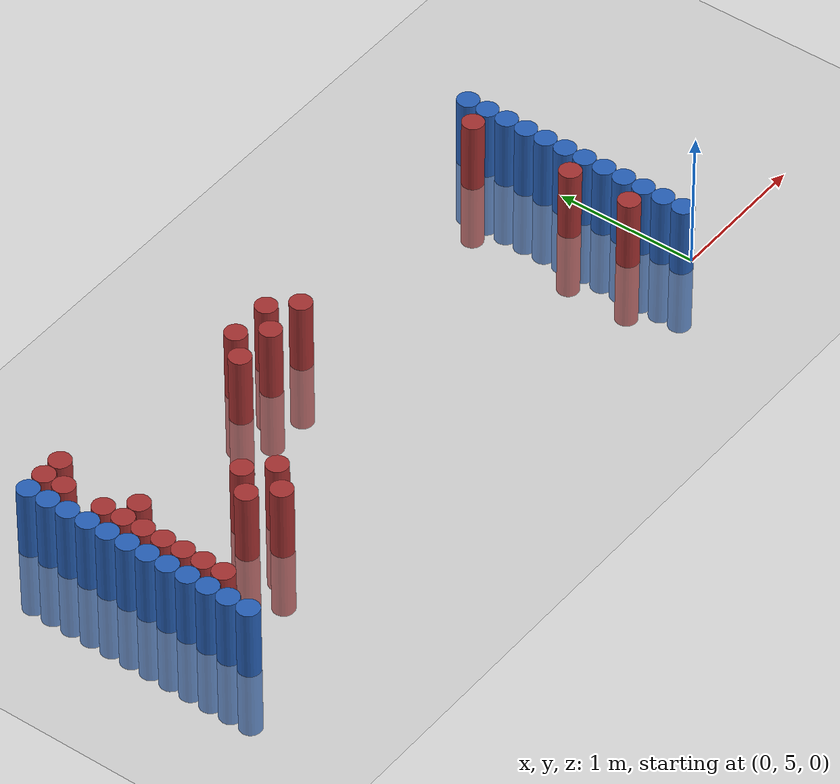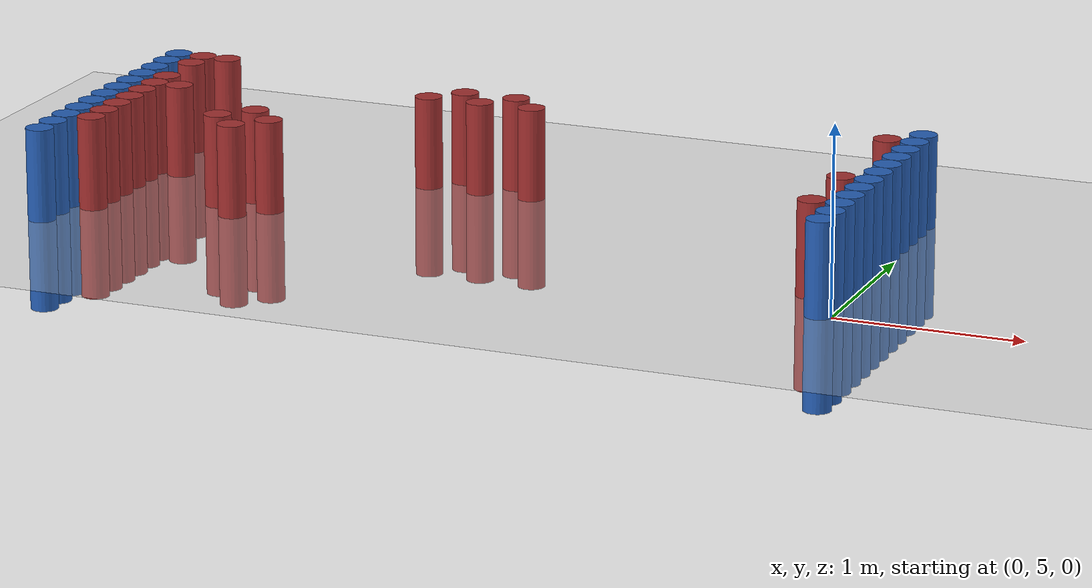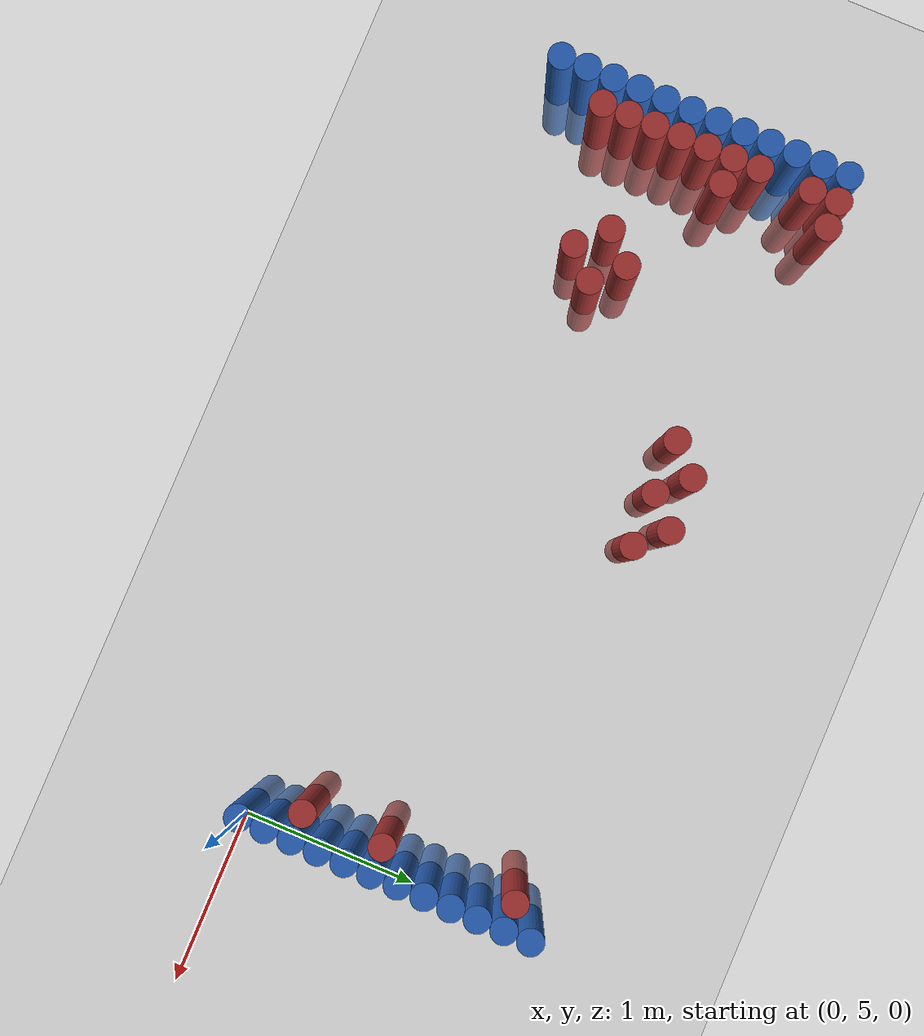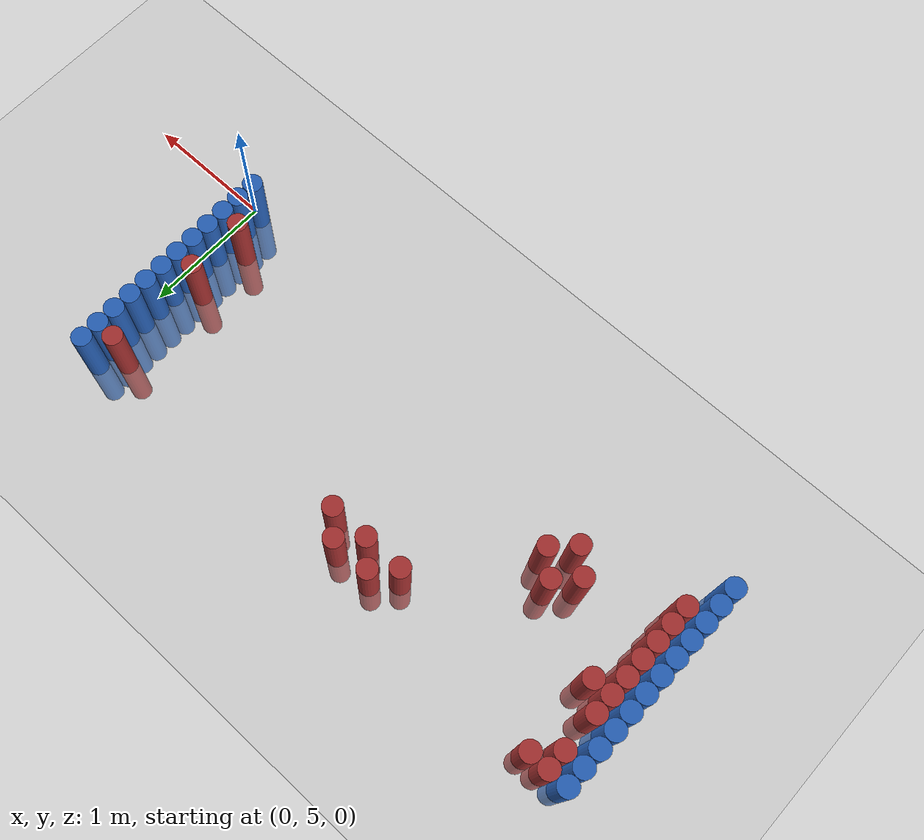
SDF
<sdf version="1.6">
 <world name="default">
  <model name="ground_plane">
   <static>1</static>
   <link name="link">
    <collision name="collision">
     <geometry><plane><normal>0 0 1</normal><size>100 100</size></plane></geometry>
     <surface><friction><ode><mu>100</mu><mu2>50</mu2></ode></friction></surface>
    </collision>
    <visual name="visual">
     <cast_shadows>0</cast_shadows>
     <geometry><plane><normal>0 0 1</normal><size>100 100</size></plane></geometry>
     <material>
      <script><uri>file://media/materials/scripts/gazebo.material</uri><name>Gazebo/Grey</name></script>
     </material>
    </visual>
   </link>
  </model>
  <model name="unit_cylinder_94">
   <static>1</static>
   <pose>-0.075000 5.025000 0.000000 0.000000 0.000000 0.000000</pose>
   <link name="link">
    <inertial>
     <mass>1</mass>
     <inertia><ixx>0.145833</ixx><ixy>0</ixy><ixz>0</ixz><iyy>0.145833</iyy><iyz>0</iyz><izz>0.125</izz></inertia>
    </inertial>
    <collision name="collision">
     <geometry><cylinder><radius>0.075000</radius><length>1</length></cylinder></geometry>
    </collision>
    <visual name="visual">
     <geometry><cylinder><radius>0.075000</radius><length>1</length></cylinder></geometry>
     <material>
      <ambient>0.152000 0.379000 0.720000 1</ambient>
      <diffuse>0.152000 0.379000 0.720000 1</diffuse>
     </material>
     <material>
      <script><name>Gazebo/Grey</name><uri>file://media/materials/scripts/gazebo.material</uri></script>
     </material>
    </visual>
   </link>
  </model>
  <model name="unit_cylinder_95">
   <static>1</static>
   <pose>-4.425000 5.025000 0.000000 0.000000 0.000000 0.000000</pose>
   <link name="link">
    <inertial>
     <mass>1</mass>
     <inertia><ixx>0.145833</ixx><ixy>0</ixy><ixz>0</ixz><iyy>0.145833</iyy><iyz>0</iyz><izz>0.125</izz></inertia>
    </inertial>
    <collision name="collision">
     <geometry><cylinder><radius>0.075000</radius><length>1</length></cylinder></geometry>
    </collision>
    <visual name="visual">
     <geometry><cylinder><radius>0.075000</radius><length>1</length></cylinder></geometry>
     <material>
      <ambient>0.152000 0.379000 0.720000 1</ambient>
      <diffuse>0.152000 0.379000 0.720000 1</diffuse>
     </material>
     <material>
      <script><name>Gazebo/Grey</name><uri>file://media/materials/scripts/gazebo.material</uri></script>
     </material>
    </visual>
   </link>
  </model>
  <model name="unit_cylinder_96">
   <static>1</static>
   <pose>-4.425000 5.175000 0.000000 0.000000 0.000000 0.000000</pose>
   <link name="link">
    <inertial>
     <mass>1</mass>
     <inertia><ixx>0.145833</ixx><ixy>0</ixy><ixz>0</ixz><iyy>0.145833</iyy><iyz>0</iyz><izz>0.125</izz></inertia>
    </inertial>
    <collision name="collision">
     <geometry><cylinder><radius>0.075000</radius><length>1</length></cylinder></geometry>
    </collision>
    <visual name="visual">
     <geometry><cylinder><radius>0.075000</radius><length>1</length></cylinder></geometry>
     <material>
      <ambient>0.152000 0.379000 0.720000 1</ambient>
      <diffuse>0.152000 0.379000 0.720000 1</diffuse>
     </material>
     <material>
      <script><name>Gazebo/Grey</name><uri>file://media/materials/scripts/gazebo.material</uri></script>
     </material>
    </visual>
   </link>
  </model>
  <model name="unit_cylinder_97">
   <static>1</static>
   <pose>-4.425000 5.325000 0.000000 0.000000 0.000000 0.000000</pose>
   <link name="link">
    <inertial>
     <mass>1</mass>
     <inertia><ixx>0.145833</ixx><ixy>0</ixy><ixz>0</ixz><iyy>0.145833</iyy><iyz>0</iyz><izz>0.125</izz></inertia>
    </inertial>
    <collision name="collision">
     <geometry><cylinder><radius>0.075000</radius><length>1</length></cylinder></geometry>
    </collision>
    <visual name="visual">
     <geometry><cylinder><radius>0.075000</radius><length>1</length></cylinder></geometry>
     <material>
      <ambient>0.152000 0.379000 0.720000 1</ambient>
      <diffuse>0.152000 0.379000 0.720000 1</diffuse>
     </material>
     <material>
      <script><name>Gazebo/Grey</name><uri>file://media/materials/scripts/gazebo.material</uri></script>
     </material>
    </visual>
   </link>
  </model>
  <model name="unit_cylinder_98">
   <static>1</static>
   <pose>-4.425000 5.475000 0.000000 0.000000 0.000000 0.000000</pose>
   <link name="link">
    <inertial>
     <mass>1</mass>
     <inertia><ixx>0.145833</ixx><ixy>0</ixy><ixz>0</ixz><iyy>0.145833</iyy><iyz>0</iyz><izz>0.125</izz></inertia>
    </inertial>
    <collision name="collision">
     <geometry><cylinder><radius>0.075000</radius><length>1</length></cylinder></geometry>
    </collision>
    <visual name="visual">
     <geometry><cylinder><radius>0.075000</radius><length>1</length></cylinder></geometry>
     <material>
      <ambient>0.152000 0.379000 0.720000 1</ambient>
      <diffuse>0.152000 0.379000 0.720000 1</diffuse>
     </material>
     <material>
      <script><name>Gazebo/Grey</name><uri>file://media/materials/scripts/gazebo.material</uri></script>
     </material>
    </visual>
   </link>
  </model>
  <model name="unit_cylinder_99">
   <static>1</static>
   <pose>-4.425000 5.625000 0.000000 0.000000 0.000000 0.000000</pose>
   <link name="link">
    <inertial>
     <mass>1</mass>
     <inertia><ixx>0.145833</ixx><ixy>0</ixy><ixz>0</ixz><iyy>0.145833</iyy><iyz>0</iyz><izz>0.125</izz></inertia>
    </inertial>
    <collision name="collision">
     <geometry><cylinder><radius>0.075000</radius><length>1</length></cylinder></geometry>
    </collision>
    <visual name="visual">
     <geometry><cylinder><radius>0.075000</radius><length>1</length></cylinder></geometry>
     <material>
      <ambient>0.152000 0.379000 0.720000 1</ambient>
      <diffuse>0.152000 0.379000 0.720000 1</diffuse>
     </material>
     <material>
      <script><name>Gazebo/Grey</name><uri>file://media/materials/scripts/gazebo.material</uri></script>
     </material>
    </visual>
   </link>
  </model>
  <model name="unit_cylinder_100">
   <static>1</static>
   <pose>-4.425000 5.775000 0.000000 0.000000 0.000000 0.000000</pose>
   <link name="link">
    <inertial>
     <mass>1</mass>
     <inertia><ixx>0.145833</ixx><ixy>0</ixy><ixz>0</ixz><iyy>0.145833</iyy><iyz>0</iyz><izz>0.125</izz></inertia>
    </inertial>
    <collision name="collision">
     <geometry><cylinder><radius>0.075000</radius><length>1</length></cylinder></geometry>
    </collision>
    <visual name="visual">
     <geometry><cylinder><radius>0.075000</radius><length>1</length></cylinder></geometry>
     <material>
      <ambient>0.152000 0.379000 0.720000 1</ambient>
      <diffuse>0.152000 0.379000 0.720000 1</diffuse>
     </material>
     <material>
      <script><name>Gazebo/Grey</name><uri>file://media/materials/scripts/gazebo.material</uri></script>
     </material>
    </visual>
   </link>
  </model>
  <model name="unit_cylinder_101">
   <static>1</static>
   <pose>-4.425000 5.925000 0.000000 0.000000 0.000000 0.000000</pose>
   <link name="link">
    <inertial>
     <mass>1</mass>
     <inertia><ixx>0.145833</ixx><ixy>0</ixy><ixz>0</ixz><iyy>0.145833</iyy><iyz>0</iyz><izz>0.125</izz></inertia>
    </inertial>
    <collision name="collision">
     <geometry><cylinder><radius>0.075000</radius><length>1</length></cylinder></geometry>
    </collision>
    <visual name="visual">
     <geometry><cylinder><radius>0.075000</radius><length>1</length></cylinder></geometry>
     <material>
      <ambient>0.152000 0.379000 0.720000 1</ambient>
      <diffuse>0.152000 0.379000 0.720000 1</diffuse>
     </material>
     <material>
      <script><name>Gazebo/Grey</name><uri>file://media/materials/scripts/gazebo.material</uri></script>
     </material>
    </visual>
   </link>
  </model>
  <model name="unit_cylinder_102">
   <static>1</static>
   <pose>-4.425000 6.075000 0.000000 0.000000 0.000000 0.000000</pose>
   <link name="link">
    <inertial>
     <mass>1</mass>
     <inertia><ixx>0.145833</ixx><ixy>0</ixy><ixz>0</ixz><iyy>0.145833</iyy><iyz>0</iyz><izz>0.125</izz></inertia>
    </inertial>
    <collision name="collision">
     <geometry><cylinder><radius>0.075000</radius><length>1</length></cylinder></geometry>
    </collision>
    <visual name="visual">
     <geometry><cylinder><radius>0.075000</radius><length>1</length></cylinder></geometry>
     <material>
      <ambient>0.152000 0.379000 0.720000 1</ambient>
      <diffuse>0.152000 0.379000 0.720000 1</diffuse>
     </material>
     <material>
      <script><name>Gazebo/Grey</name><uri>file://media/materials/scripts/gazebo.material</uri></script>
     </material>
    </visual>
   </link>
  </model>
  <model name="unit_cylinder_103">
   <static>1</static>
   <pose>-4.425000 6.225000 0.000000 0.000000 0.000000 0.000000</pose>
   <link name="link">
    <inertial>
     <mass>1</mass>
     <inertia><ixx>0.145833</ixx><ixy>0</ixy><ixz>0</ixz><iyy>0.145833</iyy><iyz>0</iyz><izz>0.125</izz></inertia>
    </inertial>
    <collision name="collision">
     <geometry><cylinder><radius>0.075000</radius><length>1</length></cylinder></geometry>
    </collision>
    <visual name="visual">
     <geometry><cylinder><radius>0.075000</radius><length>1</length></cylinder></geometry>
     <material>
      <ambient>0.152000 0.379000 0.720000 1</ambient>
      <diffuse>0.152000 0.379000 0.720000 1</diffuse>
     </material>
     <material>
      <script><name>Gazebo/Grey</name><uri>file://media/materials/scripts/gazebo.material</uri></script>
     </material>
    </visual>
   </link>
  </model>
  <model name="unit_cylinder_104">
   <static>1</static>
   <pose>-4.425000 6.375000 0.000000 0.000000 0.000000 0.000000</pose>
   <link name="link">
    <inertial>
     <mass>1</mass>
     <inertia><ixx>0.145833</ixx><ixy>0</ixy><ixz>0</ixz><iyy>0.145833</iyy><iyz>0</iyz><izz>0.125</izz></inertia>
    </inertial>
    <collision name="collision">
     <geometry><cylinder><radius>0.075000</radius><length>1</length></cylinder></geometry>
    </collision>
    <visual name="visual">
     <geometry><cylinder><radius>0.075000</radius><length>1</length></cylinder></geometry>
     <material>
      <ambient>0.152000 0.379000 0.720000 1</ambient>
      <diffuse>0.152000 0.379000 0.720000 1</diffuse>
     </material>
     <material>
      <script><name>Gazebo/Grey</name><uri>file://media/materials/scripts/gazebo.material</uri></script>
     </material>
    </visual>
   </link>
  </model>
  <model name="unit_cylinder_105">
   <static>1</static>
   <pose>-4.425000 6.525000 0.000000 0.000000 0.000000 0.000000</pose>
   <link name="link">
    <inertial>
     <mass>1</mass>
     <inertia><ixx>0.145833</ixx><ixy>0</ixy><ixz>0</ixz><iyy>0.145833</iyy><iyz>0</iyz><izz>0.125</izz></inertia>
    </inertial>
    <collision name="collision">
     <geometry><cylinder><radius>0.075000</radius><length>1</length></cylinder></geometry>
    </collision>
    <visual name="visual">
     <geometry><cylinder><radius>0.075000</radius><length>1</length></cylinder></geometry>
     <material>
      <ambient>0.152000 0.379000 0.720000 1</ambient>
      <diffuse>0.152000 0.379000 0.720000 1</diffuse>
     </material>
     <material>
      <script><name>Gazebo/Grey</name><uri>file://media/materials/scripts/gazebo.material</uri></script>
     </material>
    </visual>
   </link>
  </model>
  <model name="unit_cylinder_106">
   <static>1</static>
   <pose>-4.425000 6.675000 0.000000 0.000000 0.000000 0.000000</pose>
   <link name="link">
    <inertial>
     <mass>1</mass>
     <inertia><ixx>0.145833</ixx><ixy>0</ixy><ixz>0</ixz><iyy>0.145833</iyy><iyz>0</iyz><izz>0.125</izz></inertia>
    </inertial>
    <collision name="collision">
     <geometry><cylinder><radius>0.075000</radius><length>1</length></cylinder></geometry>
    </collision>
    <visual name="visual">
     <geometry><cylinder><radius>0.075000</radius><length>1</length></cylinder></geometry>
     <material>
      <ambient>0.152000 0.379000 0.720000 1</ambient>
      <diffuse>0.152000 0.379000 0.720000 1</diffuse>
     </material>
     <material>
      <script><name>Gazebo/Grey</name><uri>file://media/materials/scripts/gazebo.material</uri></script>
     </material>
    </visual>
   </link>
  </model>
  <model name="unit_cylinder_126">
   <static>1</static>
   <pose>-4.275000 5.325000 0.000000 0.000000 0.000000 0.000000</pose>
   <link name="link">
    <inertial>
     <mass>1</mass>
     <inertia><ixx>0.145833</ixx><ixy>0</ixy><ixz>0</ixz><iyy>0.145833</iyy><iyz>0</iyz><izz>0.125</izz></inertia>
    </inertial>
    <collision name="collision">
     <geometry><cylinder><radius>0.075000</radius><length>1</length></cylinder></geometry>
    </collision>
    <visual name="visual">
     <geometry><cylinder><radius>0.075000</radius><length>1</length></cylinder></geometry>
     <material>
      <ambient>0.648000 0.192000 0.192000 1</ambient>
      <diffuse>0.648000 0.192000 0.192000 1</diffuse>
     </material>
     <material>
      <script><name>Gazebo/Grey</name><uri>file://media/materials/scripts/gazebo.material</uri></script>
     </material>
    </visual>
   </link>
  </model>
  <model name="unit_cylinder_127">
   <static>1</static>
   <pose>-4.275000 5.475000 0.000000 0.000000 0.000000 0.000000</pose>
   <link name="link">
    <inertial>
     <mass>1</mass>
     <inertia><ixx>0.145833</ixx><ixy>0</ixy><ixz>0</ixz><iyy>0.145833</iyy><iyz>0</iyz><izz>0.125</izz></inertia>
    </inertial>
    <collision name="collision">
     <geometry><cylinder><radius>0.075000</radius><length>1</length></cylinder></geometry>
    </collision>
    <visual name="visual">
     <geometry><cylinder><radius>0.075000</radius><length>1</length></cylinder></geometry>
     <material>
      <ambient>0.648000 0.192000 0.192000 1</ambient>
      <diffuse>0.648000 0.192000 0.192000 1</diffuse>
     </material>
     <material>
      <script><name>Gazebo/Grey</name><uri>file://media/materials/scripts/gazebo.material</uri></script>
     </material>
    </visual>
   </link>
  </model>
  <model name="unit_cylinder_128">
   <static>1</static>
   <pose>-4.275000 5.625000 0.000000 0.000000 0.000000 0.000000</pose>
   <link name="link">
    <inertial>
     <mass>1</mass>
     <inertia><ixx>0.145833</ixx><ixy>0</ixy><ixz>0</ixz><iyy>0.145833</iyy><iyz>0</iyz><izz>0.125</izz></inertia>
    </inertial>
    <collision name="collision">
     <geometry><cylinder><radius>0.075000</radius><length>1</length></cylinder></geometry>
    </collision>
    <visual name="visual">
     <geometry><cylinder><radius>0.075000</radius><length>1</length></cylinder></geometry>
     <material>
      <ambient>0.648000 0.192000 0.192000 1</ambient>
      <diffuse>0.648000 0.192000 0.192000 1</diffuse>
     </material>
     <material>
      <script><name>Gazebo/Grey</name><uri>file://media/materials/scripts/gazebo.material</uri></script>
     </material>
    </visual>
   </link>
  </model>
  <model name="unit_cylinder_129">
   <static>1</static>
   <pose>-4.275000 5.775000 0.000000 0.000000 0.000000 0.000000</pose>
   <link name="link">
    <inertial>
     <mass>1</mass>
     <inertia><ixx>0.145833</ixx><ixy>0</ixy><ixz>0</ixz><iyy>0.145833</iyy><iyz>0</iyz><izz>0.125</izz></inertia>
    </inertial>
    <collision name="collision">
     <geometry><cylinder><radius>0.075000</radius><length>1</length></cylinder></geometry>
    </collision>
    <visual name="visual">
     <geometry><cylinder><radius>0.075000</radius><length>1</length></cylinder></geometry>
     <material>
      <ambient>0.648000 0.192000 0.192000 1</ambient>
      <diffuse>0.648000 0.192000 0.192000 1</diffuse>
     </material>
     <material>
      <script><name>Gazebo/Grey</name><uri>file://media/materials/scripts/gazebo.material</uri></script>
     </material>
    </visual>
   </link>
  </model>
  <model name="unit_cylinder_130">
   <static>1</static>
   <pose>-4.275000 5.925000 0.000000 0.000000 0.000000 0.000000</pose>
   <link name="link">
    <inertial>
     <mass>1</mass>
     <inertia><ixx>0.145833</ixx><ixy>0</ixy><ixz>0</ixz><iyy>0.145833</iyy><iyz>0</iyz><izz>0.125</izz></inertia>
    </inertial>
    <collision name="collision">
     <geometry><cylinder><radius>0.075000</radius><length>1</length></cylinder></geometry>
    </collision>
    <visual name="visual">
     <geometry><cylinder><radius>0.075000</radius><length>1</length></cylinder></geometry>
     <material>
      <ambient>0.648000 0.192000 0.192000 1</ambient>
      <diffuse>0.648000 0.192000 0.192000 1</diffuse>
     </material>
     <material>
      <script><name>Gazebo/Grey</name><uri>file://media/materials/scripts/gazebo.material</uri></script>
     </material>
    </visual>
   </link>
  </model>
  <model name="unit_cylinder_131">
   <static>1</static>
   <pose>-4.275000 6.075000 0.000000 0.000000 0.000000 0.000000</pose>
   <link name="link">
    <inertial>
     <mass>1</mass>
     <inertia><ixx>0.145833</ixx><ixy>0</ixy><ixz>0</ixz><iyy>0.145833</iyy><iyz>0</iyz><izz>0.125</izz></inertia>
    </inertial>
    <collision name="collision">
     <geometry><cylinder><radius>0.075000</radius><length>1</length></cylinder></geometry>
    </collision>
    <visual name="visual">
     <geometry><cylinder><radius>0.075000</radius><length>1</length></cylinder></geometry>
     <material>
      <ambient>0.648000 0.192000 0.192000 1</ambient>
      <diffuse>0.648000 0.192000 0.192000 1</diffuse>
     </material>
     <material>
      <script><name>Gazebo/Grey</name><uri>file://media/materials/scripts/gazebo.material</uri></script>
     </material>
    </visual>
   </link>
  </model>
  <model name="unit_cylinder_132">
   <static>1</static>
   <pose>-4.275000 6.225000 0.000000 0.000000 0.000000 0.000000</pose>
   <link name="link">
    <inertial>
     <mass>1</mass>
     <inertia><ixx>0.145833</ixx><ixy>0</ixy><ixz>0</ixz><iyy>0.145833</iyy><iyz>0</iyz><izz>0.125</izz></inertia>
    </inertial>
    <collision name="collision">
     <geometry><cylinder><radius>0.075000</radius><length>1</length></cylinder></geometry>
    </collision>
    <visual name="visual">
     <geometry><cylinder><radius>0.075000</radius><length>1</length></cylinder></geometry>
     <material>
      <ambient>0.648000 0.192000 0.192000 1</ambient>
      <diffuse>0.648000 0.192000 0.192000 1</diffuse>
     </material>
     <material>
      <script><name>Gazebo/Grey</name><uri>file://media/materials/scripts/gazebo.material</uri></script>
     </material>
    </visual>
   </link>
  </model>
  <model name="unit_cylinder_133">
   <static>1</static>
   <pose>-4.275000 6.525000 0.000000 0.000000 0.000000 0.000000</pose>
   <link name="link">
    <inertial>
     <mass>1</mass>
     <inertia><ixx>0.145833</ixx><ixy>0</ixy><ixz>0</ixz><iyy>0.145833</iyy><iyz>0</iyz><izz>0.125</izz></inertia>
    </inertial>
    <collision name="collision">
     <geometry><cylinder><radius>0.075000</radius><length>1</length></cylinder></geometry>
    </collision>
    <visual name="visual">
     <geometry><cylinder><radius>0.075000</radius><length>1</length></cylinder></geometry>
     <material>
      <ambient>0.648000 0.192000 0.192000 1</ambient>
      <diffuse>0.648000 0.192000 0.192000 1</diffuse>
     </material>
     <material>
      <script><name>Gazebo/Grey</name><uri>file://media/materials/scripts/gazebo.material</uri></script>
     </material>
    </visual>
   </link>
  </model>
  <model name="unit_cylinder_134">
   <static>1</static>
   <pose>-4.275000 6.675000 0.000000 0.000000 0.000000 0.000000</pose>
   <link name="link">
    <inertial>
     <mass>1</mass>
     <inertia><ixx>0.145833</ixx><ixy>0</ixy><ixz>0</ixz><iyy>0.145833</iyy><iyz>0</iyz><izz>0.125</izz></inertia>
    </inertial>
    <collision name="collision">
     <geometry><cylinder><radius>0.075000</radius><length>1</length></cylinder></geometry>
    </collision>
    <visual name="visual">
     <geometry><cylinder><radius>0.075000</radius><length>1</length></cylinder></geometry>
     <material>
      <ambient>0.648000 0.192000 0.192000 1</ambient>
      <diffuse>0.648000 0.192000 0.192000 1</diffuse>
     </material>
     <material>
      <script><name>Gazebo/Grey</name><uri>file://media/materials/scripts/gazebo.material</uri></script>
     </material>
    </visual>
   </link>
  </model>
  <model name="unit_cylinder_145">
   <static>1</static>
   <pose>-4.125000 6.075000 0.000000 0.000000 0.000000 0.000000</pose>
   <link name="link">
    <inertial>
     <mass>1</mass>
     <inertia><ixx>0.145833</ixx><ixy>0</ixy><ixz>0</ixz><iyy>0.145833</iyy><iyz>0</iyz><izz>0.125</izz></inertia>
    </inertial>
    <collision name="collision">
     <geometry><cylinder><radius>0.075000</radius><length>1</length></cylinder></geometry>
    </collision>
    <visual name="visual">
     <geometry><cylinder><radius>0.075000</radius><length>1</length></cylinder></geometry>
     <material>
      <ambient>0.648000 0.192000 0.192000 1</ambient>
      <diffuse>0.648000 0.192000 0.192000 1</diffuse>
     </material>
     <material>
      <script><name>Gazebo/Grey</name><uri>file://media/materials/scripts/gazebo.material</uri></script>
     </material>
    </visual>
   </link>
  </model>
  <model name="unit_cylinder_146">
   <static>1</static>
   <pose>-4.125000 6.675000 0.000000 0.000000 0.000000 0.000000</pose>
   <link name="link">
    <inertial>
     <mass>1</mass>
     <inertia><ixx>0.145833</ixx><ixy>0</ixy><ixz>0</ixz><iyy>0.145833</iyy><iyz>0</iyz><izz>0.125</izz></inertia>
    </inertial>
    <collision name="collision">
     <geometry><cylinder><radius>0.075000</radius><length>1</length></cylinder></geometry>
    </collision>
    <visual name="visual">
     <geometry><cylinder><radius>0.075000</radius><length>1</length></cylinder></geometry>
     <material>
      <ambient>0.648000 0.192000 0.192000 1</ambient>
      <diffuse>0.648000 0.192000 0.192000 1</diffuse>
     </material>
     <material>
      <script><name>Gazebo/Grey</name><uri>file://media/materials/scripts/gazebo.material</uri></script>
     </material>
    </visual>
   </link>
  </model>
  <model name="unit_cylinder_156">
   <static>1</static>
   <pose>-3.675000 5.625000 0.000000 0.000000 0.000000 0.000000</pose>
   <link name="link">
    <inertial>
     <mass>1</mass>
     <inertia><ixx>0.145833</ixx><ixy>0</ixy><ixz>0</ixz><iyy>0.145833</iyy><iyz>0</iyz><izz>0.125</izz></inertia>
    </inertial>
    <collision name="collision">
     <geometry><cylinder><radius>0.075000</radius><length>1</length></cylinder></geometry>
    </collision>
    <visual name="visual">
     <geometry><cylinder><radius>0.075000</radius><length>1</length></cylinder></geometry>
     <material>
      <ambient>0.648000 0.192000 0.192000 1</ambient>
      <diffuse>0.648000 0.192000 0.192000 1</diffuse>
     </material>
     <material>
      <script><name>Gazebo/Grey</name><uri>file://media/materials/scripts/gazebo.material</uri></script>
     </material>
    </visual>
   </link>
  </model>
  <model name="unit_cylinder_160">
   <static>1</static>
   <pose>-3.525000 5.475000 0.000000 0.000000 0.000000 0.000000</pose>
   <link name="link">
    <inertial>
     <mass>1</mass>
     <inertia><ixx>0.145833</ixx><ixy>0</ixy><ixz>0</ixz><iyy>0.145833</iyy><iyz>0</iyz><izz>0.125</izz></inertia>
    </inertial>
    <collision name="collision">
     <geometry><cylinder><radius>0.075000</radius><length>1</length></cylinder></geometry>
    </collision>
    <visual name="visual">
     <geometry><cylinder><radius>0.075000</radius><length>1</length></cylinder></geometry>
     <material>
      <ambient>0.648000 0.192000 0.192000 1</ambient>
      <diffuse>0.648000 0.192000 0.192000 1</diffuse>
     </material>
     <material>
      <script><name>Gazebo/Grey</name><uri>file://media/materials/scripts/gazebo.material</uri></script>
     </material>
    </visual>
   </link>
  </model>
  <model name="unit_cylinder_161">
   <static>1</static>
   <pose>-3.525000 5.775000 0.000000 0.000000 0.000000 0.000000</pose>
   <link name="link">
    <inertial>
     <mass>1</mass>
     <inertia><ixx>0.145833</ixx><ixy>0</ixy><ixz>0</ixz><iyy>0.145833</iyy><iyz>0</iyz><izz>0.125</izz></inertia>
    </inertial>
    <collision name="collision">
     <geometry><cylinder><radius>0.075000</radius><length>1</length></cylinder></geometry>
    </collision>
    <visual name="visual">
     <geometry><cylinder><radius>0.075000</radius><length>1</length></cylinder></geometry>
     <material>
      <ambient>0.648000 0.192000 0.192000 1</ambient>
      <diffuse>0.648000 0.192000 0.192000 1</diffuse>
     </material>
     <material>
      <script><name>Gazebo/Grey</name><uri>file://media/materials/scripts/gazebo.material</uri></script>
     </material>
    </visual>
   </link>
  </model>
  <model name="unit_cylinder_163">
   <static>1</static>
   <pose>-3.375000 5.625000 0.000000 0.000000 0.000000 0.000000</pose>
   <link name="link">
    <inertial>
     <mass>1</mass>
     <inertia><ixx>0.145833</ixx><ixy>0</ixy><ixz>0</ixz><iyy>0.145833</iyy><iyz>0</iyz><izz>0.125</izz></inertia>
    </inertial>
    <collision name="collision">
     <geometry><cylinder><radius>0.075000</radius><length>1</length></cylinder></geometry>
    </collision>
    <visual name="visual">
     <geometry><cylinder><radius>0.075000</radius><length>1</length></cylinder></geometry>
     <material>
      <ambient>0.648000 0.192000 0.192000 1</ambient>
      <diffuse>0.648000 0.192000 0.192000 1</diffuse>
     </material>
     <material>
      <script><name>Gazebo/Grey</name><uri>file://media/materials/scripts/gazebo.material</uri></script>
     </material>
    </visual>
   </link>
  </model>
  <model name="unit_cylinder_164">
   <static>1</static>
   <pose>-2.775000 6.375000 0.000000 0.000000 0.000000 0.000000</pose>
   <link name="link">
    <inertial>
     <mass>1</mass>
     <inertia><ixx>0.145833</ixx><ixy>0</ixy><ixz>0</ixz><iyy>0.145833</iyy><iyz>0</iyz><izz>0.125</izz></inertia>
    </inertial>
    <collision name="collision">
     <geometry><cylinder><radius>0.075000</radius><length>1</length></cylinder></geometry>
    </collision>
    <visual name="visual">
     <geometry><cylinder><radius>0.075000</radius><length>1</length></cylinder></geometry>
     <material>
      <ambient>0.648000 0.192000 0.192000 1</ambient>
      <diffuse>0.648000 0.192000 0.192000 1</diffuse>
     </material>
     <material>
      <script><name>Gazebo/Grey</name><uri>file://media/materials/scripts/gazebo.material</uri></script>
     </material>
    </visual>
   </link>
  </model>
  <model name="unit_cylinder_165">
   <static>1</static>
   <pose>-2.625000 6.525000 0.000000 0.000000 0.000000 0.000000</pose>
   <link name="link">
    <inertial>
     <mass>1</mass>
     <inertia><ixx>0.145833</ixx><ixy>0</ixy><ixz>0</ixz><iyy>0.145833</iyy><iyz>0</iyz><izz>0.125</izz></inertia>
    </inertial>
    <collision name="collision">
     <geometry><cylinder><radius>0.075000</radius><length>1</length></cylinder></geometry>
    </collision>
    <visual name="visual">
     <geometry><cylinder><radius>0.075000</radius><length>1</length></cylinder></geometry>
     <material>
      <ambient>0.648000 0.192000 0.192000 1</ambient>
      <diffuse>0.648000 0.192000 0.192000 1</diffuse>
     </material>
     <material>
      <script><name>Gazebo/Grey</name><uri>file://media/materials/scripts/gazebo.material</uri></script>
     </material>
    </visual>
   </link>
  </model>
  <model name="unit_cylinder_166">
   <static>1</static>
   <pose>-2.475000 6.375000 0.000000 0.000000 0.000000 0.000000</pose>
   <link name="link">
    <inertial>
     <mass>1</mass>
     <inertia><ixx>0.145833</ixx><ixy>0</ixy><ixz>0</ixz><iyy>0.145833</iyy><iyz>0</iyz><izz>0.125</izz></inertia>
    </inertial>
    <collision name="collision">
     <geometry><cylinder><radius>0.075000</radius><length>1</length></cylinder></geometry>
    </collision>
    <visual name="visual">
     <geometry><cylinder><radius>0.075000</radius><length>1</length></cylinder></geometry>
     <material>
      <ambient>0.648000 0.192000 0.192000 1</ambient>
      <diffuse>0.648000 0.192000 0.192000 1</diffuse>
     </material>
     <material>
      <script><name>Gazebo/Grey</name><uri>file://media/materials/scripts/gazebo.material</uri></script>
     </material>
    </visual>
   </link>
  </model>
  <model name="unit_cylinder_167">
   <static>1</static>
   <pose>-2.325000 6.525000 0.000000 0.000000 0.000000 0.000000</pose>
   <link name="link">
    <inertial>
     <mass>1</mass>
     <inertia><ixx>0.145833</ixx><ixy>0</ixy><ixz>0</ixz><iyy>0.145833</iyy><iyz>0</iyz><izz>0.125</izz></inertia>
    </inertial>
    <collision name="collision">
     <geometry><cylinder><radius>0.075000</radius><length>1</length></cylinder></geometry>
    </collision>
    <visual name="visual">
     <geometry><cylinder><radius>0.075000</radius><length>1</length></cylinder></geometry>
     <material>
      <ambient>0.648000 0.192000 0.192000 1</ambient>
      <diffuse>0.648000 0.192000 0.192000 1</diffuse>
     </material>
     <material>
      <script><name>Gazebo/Grey</name><uri>file://media/materials/scripts/gazebo.material</uri></script>
     </material>
    </visual>
   </link>
  </model>
  <model name="unit_cylinder_171">
   <static>1</static>
   <pose>-2.175000 6.375000 0.000000 0.000000 0.000000 0.000000</pose>
   <link name="link">
    <inertial>
     <mass>1</mass>
     <inertia><ixx>0.145833</ixx><ixy>0</ixy><ixz>0</ixz><iyy>0.145833</iyy><iyz>0</iyz><izz>0.125</izz></inertia>
    </inertial>
    <collision name="collision">
     <geometry><cylinder><radius>0.075000</radius><length>1</length></cylinder></geometry>
    </collision>
    <visual name="visual">
     <geometry><cylinder><radius>0.075000</radius><length>1</length></cylinder></geometry>
     <material>
      <ambient>0.648000 0.192000 0.192000 1</ambient>
      <diffuse>0.648000 0.192000 0.192000 1</diffuse>
     </material>
     <material>
      <script><name>Gazebo/Grey</name><uri>file://media/materials/scripts/gazebo.material</uri></script>
     </material>
    </visual>
   </link>
  </model>
  <model name="unit_cylinder_197">
   <static>1</static>
   <pose>-0.225000 5.325000 0.000000 0.000000 0.000000 0.000000</pose>
   <link name="link">
    <inertial>
     <mass>1</mass>
     <inertia><ixx>0.145833</ixx><ixy>0</ixy><ixz>0</ixz><iyy>0.145833</iyy><iyz>0</iyz><izz>0.125</izz></inertia>
    </inertial>
    <collision name="collision">
     <geometry><cylinder><radius>0.075000</radius><length>1</length></cylinder></geometry>
    </collision>
    <visual name="visual">
     <geometry><cylinder><radius>0.075000</radius><length>1</length></cylinder></geometry>
     <material>
      <ambient>0.648000 0.192000 0.192000 1</ambient>
      <diffuse>0.648000 0.192000 0.192000 1</diffuse>
     </material>
     <material>
      <script><name>Gazebo/Grey</name><uri>file://media/materials/scripts/gazebo.material</uri></script>
     </material>
    </visual>
   </link>
  </model>
  <model name="unit_cylinder_198">
   <static>1</static>
   <pose>-0.225000 5.775000 0.000000 0.000000 0.000000 0.000000</pose>
   <link name="link">
    <inertial>
     <mass>1</mass>
     <inertia><ixx>0.145833</ixx><ixy>0</ixy><ixz>0</ixz><iyy>0.145833</iyy><iyz>0</iyz><izz>0.125</izz></inertia>
    </inertial>
    <collision name="collision">
     <geometry><cylinder><radius>0.075000</radius><length>1</length></cylinder></geometry>
    </collision>
    <visual name="visual">
     <geometry><cylinder><radius>0.075000</radius><length>1</length></cylinder></geometry>
     <material>
      <ambient>0.648000 0.192000 0.192000 1</ambient>
      <diffuse>0.648000 0.192000 0.192000 1</diffuse>
     </material>
     <material>
      <script><name>Gazebo/Grey</name><uri>file://media/materials/scripts/gazebo.material</uri></script>
     </material>
    </visual>
   </link>
  </model>
  <model name="unit_cylinder_199">
   <static>1</static>
   <pose>-0.225000 6.525000 0.000000 0.000000 0.000000 0.000000</pose>
   <link name="link">
    <inertial>
     <mass>1</mass>
     <inertia><ixx>0.145833</ixx><ixy>0</ixy><ixz>0</ixz><iyy>0.145833</iyy><iyz>0</iyz><izz>0.125</izz></inertia>
    </inertial>
    <collision name="collision">
     <geometry><cylinder><radius>0.075000</radius><length>1</length></cylinder></geometry>
    </collision>
    <visual name="visual">
     <geometry><cylinder><radius>0.075000</radius><length>1</length></cylinder></geometry>
     <material>
      <ambient>0.648000 0.192000 0.192000 1</ambient>
      <diffuse>0.648000 0.192000 0.192000 1</diffuse>
     </material>
     <material>
      <script><name>Gazebo/Grey</name><uri>file://media/materials/scripts/gazebo.material</uri></script>
     </material>
    </visual>
   </link>
  </model>
  <model name="unit_cylinder_204">
   <static>1</static>
   <pose>-0.075000 5.175000 0.000000 0.000000 0.000000 0.000000</pose>
   <link name="link">
    <inertial>
     <mass>1</mass>
     <inertia><ixx>0.145833</ixx><ixy>0</ixy><ixz>0</ixz><iyy>0.145833</iyy><iyz>0</iyz><izz>0.125</izz></inertia>
    </inertial>
    <collision name="collision">
     <geometry><cylinder><radius>0.075000</radius><length>1</length></cylinder></geometry>
    </collision>
    <visual name="visual">
     <geometry><cylinder><radius>0.075000</radius><length>1</length></cylinder></geometry>
     <material>
      <ambient>0.152000 0.379000 0.720000 1</ambient>
      <diffuse>0.152000 0.379000 0.720000 1</diffuse>
     </material>
     <material>
      <script><name>Gazebo/Grey</name><uri>file://media/materials/scripts/gazebo.material</uri></script>
     </material>
    </visual>
   </link>
  </model>
  <model name="unit_cylinder_205">
   <static>1</static>
   <pose>-0.075000 5.325000 0.000000 0.000000 0.000000 0.000000</pose>
   <link name="link">
    <inertial>
     <mass>1</mass>
     <inertia><ixx>0.145833</ixx><ixy>0</ixy><ixz>0</ixz><iyy>0.145833</iyy><iyz>0</iyz><izz>0.125</izz></inertia>
    </inertial>
    <collision name="collision">
     <geometry><cylinder><radius>0.075000</radius><length>1</length></cylinder></geometry>
    </collision>
    <visual name="visual">
     <geometry><cylinder><radius>0.075000</radius><length>1</length></cylinder></geometry>
     <material>
      <ambient>0.152000 0.379000 0.720000 1</ambient>
      <diffuse>0.152000 0.379000 0.720000 1</diffuse>
     </material>
     <material>
      <script><name>Gazebo/Grey</name><uri>file://media/materials/scripts/gazebo.material</uri></script>
     </material>
    </visual>
   </link>
  </model>
  <model name="unit_cylinder_206">
   <static>1</static>
   <pose>-0.075000 5.475000 0.000000 0.000000 0.000000 0.000000</pose>
   <link name="link">
    <inertial>
     <mass>1</mass>
     <inertia><ixx>0.145833</ixx><ixy>0</ixy><ixz>0</ixz><iyy>0.145833</iyy><iyz>0</iyz><izz>0.125</izz></inertia>
    </inertial>
    <collision name="collision">
     <geometry><cylinder><radius>0.075000</radius><length>1</length></cylinder></geometry>
    </collision>
    <visual name="visual">
     <geometry><cylinder><radius>0.075000</radius><length>1</length></cylinder></geometry>
     <material>
      <ambient>0.152000 0.379000 0.720000 1</ambient>
      <diffuse>0.152000 0.379000 0.720000 1</diffuse>
     </material>
     <material>
      <script><name>Gazebo/Grey</name><uri>file://media/materials/scripts/gazebo.material</uri></script>
     </material>
    </visual>
   </link>
  </model>
  <model name="unit_cylinder_207">
   <static>1</static>
   <pose>-0.075000 5.625000 0.000000 0.000000 0.000000 0.000000</pose>
   <link name="link">
    <inertial>
     <mass>1</mass>
     <inertia><ixx>0.145833</ixx><ixy>0</ixy><ixz>0</ixz><iyy>0.145833</iyy><iyz>0</iyz><izz>0.125</izz></inertia>
    </inertial>
    <collision name="collision">
     <geometry><cylinder><radius>0.075000</radius><length>1</length></cylinder></geometry>
    </collision>
    <visual name="visual">
     <geometry><cylinder><radius>0.075000</radius><length>1</length></cylinder></geometry>
     <material>
      <ambient>0.152000 0.379000 0.720000 1</ambient>
      <diffuse>0.152000 0.379000 0.720000 1</diffuse>
     </material>
     <material>
      <script><name>Gazebo/Grey</name><uri>file://media/materials/scripts/gazebo.material</uri></script>
     </material>
    </visual>
   </link>
  </model>
  <model name="unit_cylinder_208">
   <static>1</static>
   <pose>-0.075000 5.775000 0.000000 0.000000 0.000000 0.000000</pose>
   <link name="link">
    <inertial>
     <mass>1</mass>
     <inertia><ixx>0.145833</ixx><ixy>0</ixy><ixz>0</ixz><iyy>0.145833</iyy><iyz>0</iyz><izz>0.125</izz></inertia>
    </inertial>
    <collision name="collision">
     <geometry><cylinder><radius>0.075000</radius><length>1</length></cylinder></geometry>
    </collision>
    <visual name="visual">
     <geometry><cylinder><radius>0.075000</radius><length>1</length></cylinder></geometry>
     <material>
      <ambient>0.152000 0.379000 0.720000 1</ambient>
      <diffuse>0.152000 0.379000 0.720000 1</diffuse>
     </material>
     <material>
      <script><name>Gazebo/Grey</name><uri>file://media/materials/scripts/gazebo.material</uri></script>
     </material>
    </visual>
   </link>
  </model>
  <model name="unit_cylinder_209">
   <static>1</static>
   <pose>-0.075000 5.925000 0.000000 0.000000 0.000000 0.000000</pose>
   <link name="link">
    <inertial>
     <mass>1</mass>
     <inertia><ixx>0.145833</ixx><ixy>0</ixy><ixz>0</ixz><iyy>0.145833</iyy><iyz>0</iyz><izz>0.125</izz></inertia>
    </inertial>
    <collision name="collision">
     <geometry><cylinder><radius>0.075000</radius><length>1</length></cylinder></geometry>
    </collision>
    <visual name="visual">
     <geometry><cylinder><radius>0.075000</radius><length>1</length></cylinder></geometry>
     <material>
      <ambient>0.152000 0.379000 0.720000 1</ambient>
      <diffuse>0.152000 0.379000 0.720000 1</diffuse>
     </material>
     <material>
      <script><name>Gazebo/Grey</name><uri>file://media/materials/scripts/gazebo.material</uri></script>
     </material>
    </visual>
   </link>
  </model>
  <model name="unit_cylinder_210">
   <static>1</static>
   <pose>-0.075000 6.075000 0.000000 0.000000 0.000000 0.000000</pose>
   <link name="link">
    <inertial>
     <mass>1</mass>
     <inertia><ixx>0.145833</ixx><ixy>0</ixy><ixz>0</ixz><iyy>0.145833</iyy><iyz>0</iyz><izz>0.125</izz></inertia>
    </inertial>
    <collision name="collision">
     <geometry><cylinder><radius>0.075000</radius><length>1</length></cylinder></geometry>
    </collision>
    <visual name="visual">
     <geometry><cylinder><radius>0.075000</radius><length>1</length></cylinder></geometry>
     <material>
      <ambient>0.152000 0.379000 0.720000 1</ambient>
      <diffuse>0.152000 0.379000 0.720000 1</diffuse>
     </material>
     <material>
      <script><name>Gazebo/Grey</name><uri>file://media/materials/scripts/gazebo.material</uri></script>
     </material>
    </visual>
   </link>
  </model>
  <model name="unit_cylinder_211">
   <static>1</static>
   <pose>-0.075000 6.225000 0.000000 0.000000 0.000000 0.000000</pose>
   <link name="link">
    <inertial>
     <mass>1</mass>
     <inertia><ixx>0.145833</ixx><ixy>0</ixy><ixz>0</ixz><iyy>0.145833</iyy><iyz>0</iyz><izz>0.125</izz></inertia>
    </inertial>
    <collision name="collision">
     <geometry><cylinder><radius>0.075000</radius><length>1</length></cylinder></geometry>
    </collision>
    <visual name="visual">
     <geometry><cylinder><radius>0.075000</radius><length>1</length></cylinder></geometry>
     <material>
      <ambient>0.152000 0.379000 0.720000 1</ambient>
      <diffuse>0.152000 0.379000 0.720000 1</diffuse>
     </material>
     <material>
      <script><name>Gazebo/Grey</name><uri>file://media/materials/scripts/gazebo.material</uri></script>
     </material>
    </visual>
   </link>
  </model>
  <model name="unit_cylinder_212">
   <static>1</static>
   <pose>-0.075000 6.375000 0.000000 0.000000 0.000000 0.000000</pose>
   <link name="link">
    <inertial>
     <mass>1</mass>
     <inertia><ixx>0.145833</ixx><ixy>0</ixy><ixz>0</ixz><iyy>0.145833</iyy><iyz>0</iyz><izz>0.125</izz></inertia>
    </inertial>
    <collision name="collision">
     <geometry><cylinder><radius>0.075000</radius><length>1</length></cylinder></geometry>
    </collision>
    <visual name="visual">
     <geometry><cylinder><radius>0.075000</radius><length>1</length></cylinder></geometry>
     <material>
      <ambient>0.152000 0.379000 0.720000 1</ambient>
      <diffuse>0.152000 0.379000 0.720000 1</diffuse>
     </material>
     <material>
      <script><name>Gazebo/Grey</name><uri>file://media/materials/scripts/gazebo.material</uri></script>
     </material>
    </visual>
   </link>
  </model>
  <model name="unit_cylinder_213">
   <static>1</static>
   <pose>-0.075000 6.525000 0.000000 0.000000 0.000000 0.000000</pose>
   <link name="link">
    <inertial>
     <mass>1</mass>
     <inertia><ixx>0.145833</ixx><ixy>0</ixy><ixz>0</ixz><iyy>0.145833</iyy><iyz>0</iyz><izz>0.125</izz></inertia>
    </inertial>
    <collision name="collision">
     <geometry><cylinder><radius>0.075000</radius><length>1</length></cylinder></geometry>
    </collision>
    <visual name="visual">
     <geometry><cylinder><radius>0.075000</radius><length>1</length></cylinder></geometry>
     <material>
      <ambient>0.152000 0.379000 0.720000 1</ambient>
      <diffuse>0.152000 0.379000 0.720000 1</diffuse>
     </material>
     <material>
      <script><name>Gazebo/Grey</name><uri>file://media/materials/scripts/gazebo.material</uri></script>
     </material>
    </visual>
   </link>
  </model>
  <model name="unit_cylinder_214">
   <static>1</static>
   <pose>-0.075000 6.675000 0.000000 0.000000 0.000000 0.000000</pose>
   <link name="link">
    <inertial>
     <mass>1</mass>
     <inertia><ixx>0.145833</ixx><ixy>0</ixy><ixz>0</ixz><iyy>0.145833</iyy><iyz>0</iyz><izz>0.125</izz></inertia>
    </inertial>
    <collision name="collision">
     <geometry><cylinder><radius>0.075000</radius><length>1</length></cylinder></geometry>
    </collision>
    <visual name="visual">
     <geometry><cylinder><radius>0.075000</radius><length>1</length></cylinder></geometry>
     <material>
      <ambient>0.152000 0.379000 0.720000 1</ambient>
      <diffuse>0.152000 0.379000 0.720000 1</diffuse>
     </material>
     <material>
      <script><name>Gazebo/Grey</name><uri>file://media/materials/scripts/gazebo.material</uri></script>
     </material>
    </visual>
   </link>
  </model>
 </world>
</sdf>
